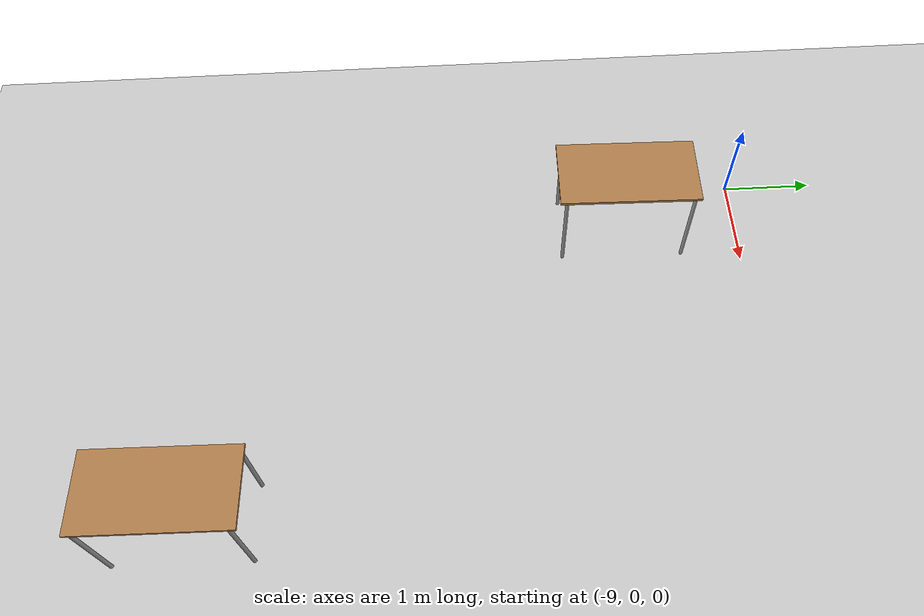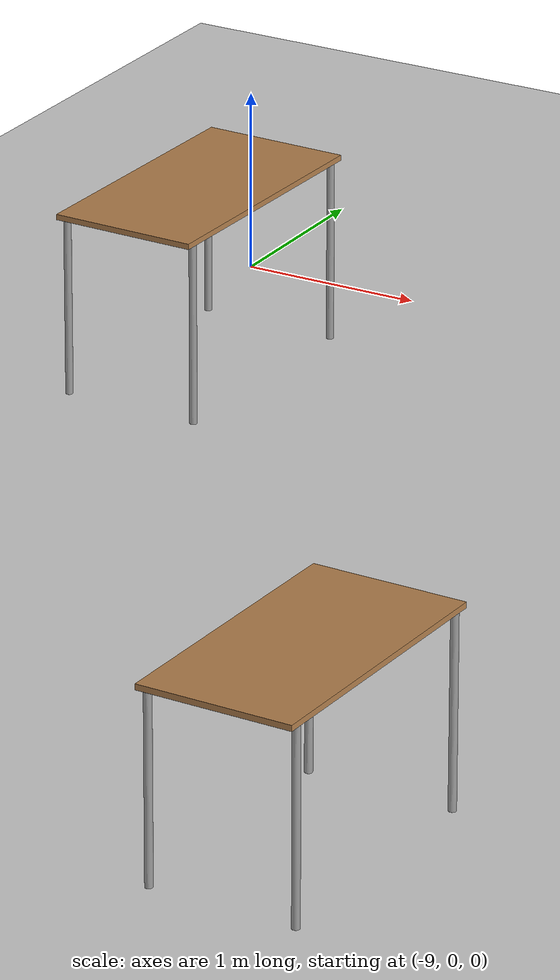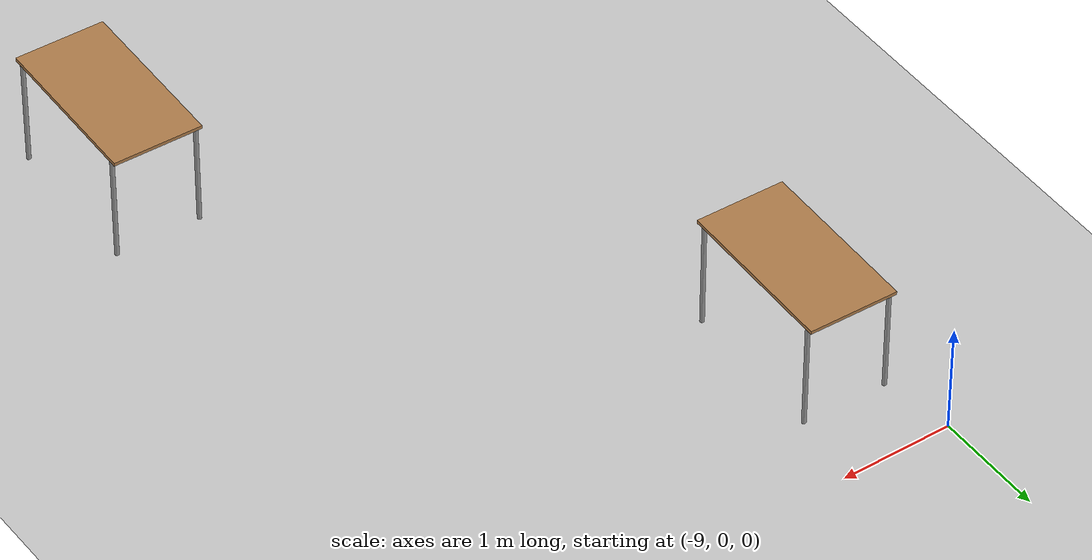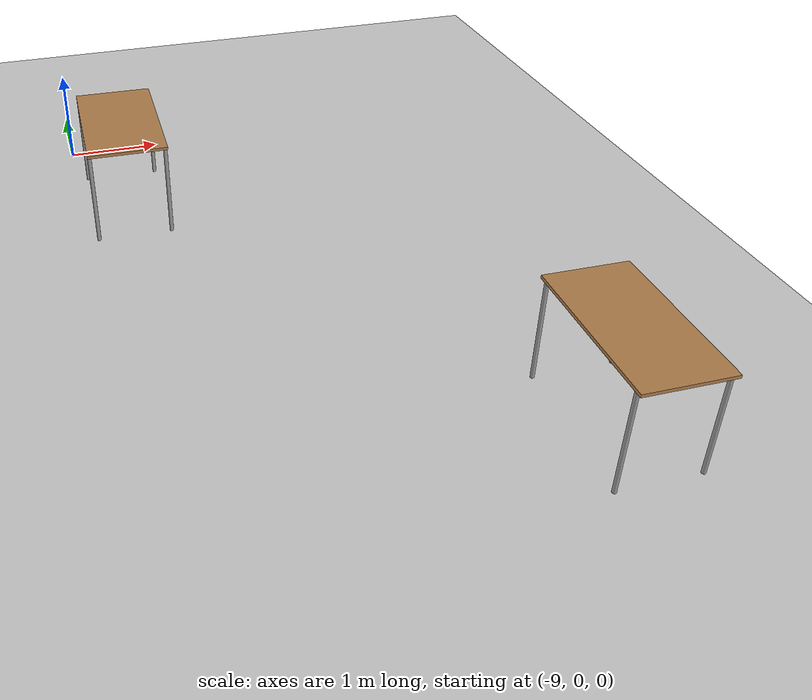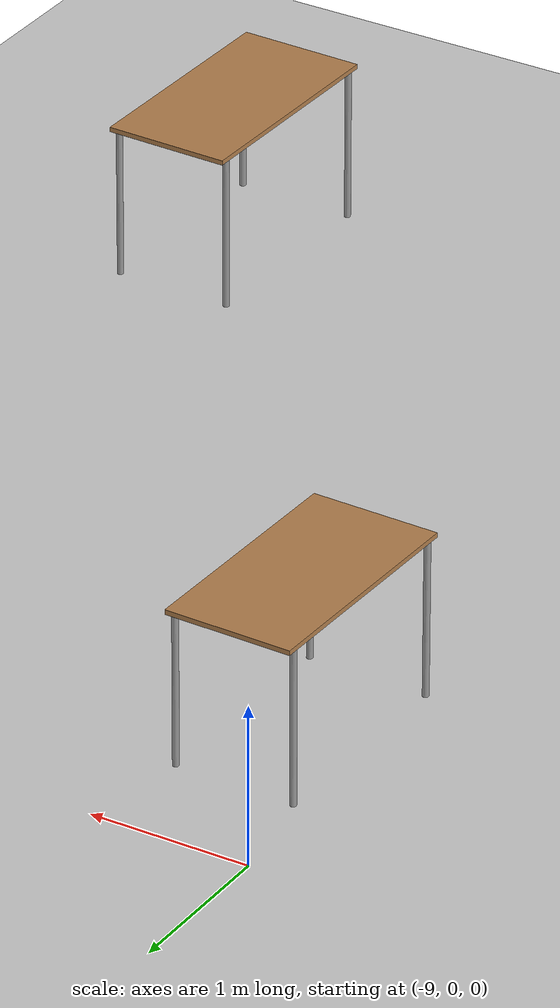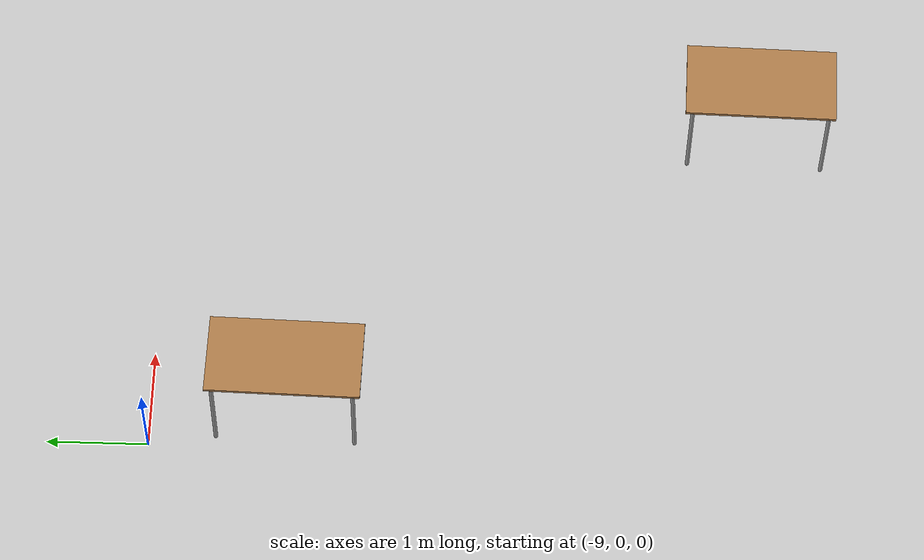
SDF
<sdf version="1.6">
 <world name="default">
  <model name="ground_plane">
   <static>1</static>
   <link name="link">
    <collision name="collision">
     <geometry><plane><normal>0 0 1</normal><size>100 100</size></plane></geometry>
     <surface>
      <contact><collide_bitmask>65535</collide_bitmask></contact>
      <friction><ode><mu>100</mu><mu2>50</mu2></ode></friction>
     </surface>
    </collision>
    <visual name="visual">
     <cast_shadows>0</cast_shadows>
     <geometry><plane><normal>0 0 1</normal><size>100 100</size></plane></geometry>
     <material>
      <script><uri>file://media/materials/scripts/gazebo.material</uri><name>Gazebo/Grey</name></script>
     </material>
    </visual>
   </link>
  </model>
  <model name="table_3_clone_5">
   <static>1</static>
   <link name="link">
    <collision name="surface">
     <pose>0 0 1 0 -0 0</pose>
     <geometry><box><size>1.5 0.8 0.03</size></box></geometry>
     <surface><friction><ode><mu>0.6</mu><mu2>0.6</mu2></ode></friction></surface>
    </collision>
    <visual name="visual1">
     <pose>0 0 1 0 -0 0</pose>
     <geometry><box><size>1.5 0.8 0.03</size></box></geometry>
     <material>
      <script><uri>file://media/materials/scripts/gazebo.material</uri><name>Gazebo/Wood</name></script>
     </material>
    </visual>
    <collision name="front_left_leg">
     <pose>0.68 0.38 0.5 0 -0 0</pose>
     <geometry><cylinder><radius>0.02</radius><length>1</length></cylinder></geometry>
    </collision>
    <visual name="front_left_leg">
     <pose>0.68 0.38 0.5 0 -0 0</pose>
     <geometry><cylinder><radius>0.02</radius><length>1</length></cylinder></geometry>
     <material>
      <script><uri>file://media/materials/scripts/gazebo.material</uri><name>Gazebo/Grey</name></script>
     </material>
    </visual>
    <collision name="front_right_leg">
     <pose>0.68 -0.38 0.5 0 -0 0</pose>
     <geometry><cylinder><radius>0.02</radius><length>1</length></cylinder></geometry>
    </collision>
    <visual name="front_right_leg">
     <pose>0.68 -0.38 0.5 0 -0 0</pose>
     <geometry><cylinder><radius>0.02</radius><length>1</length></cylinder></geometry>
     <material>
      <script><uri>file://media/materials/scripts/gazebo.material</uri><name>Gazebo/Grey</name></script>
     </material>
    </visual>
    <collision name="back_right_leg">
     <pose>-0.68 -0.38 0.5 0 -0 0</pose>
     <geometry><cylinder><radius>0.02</radius><length>1</length></cylinder></geometry>
    </collision>
    <visual name="back_right_leg">
     <pose>-0.68 -0.38 0.5 0 -0 0</pose>
     <geometry><cylinder><radius>0.02</radius><length>1</length></cylinder></geometry>
     <material>
      <script><uri>file://media/materials/scripts/gazebo.material</uri><name>Gazebo/Grey</name></script>
     </material>
    </visual>
    <collision name="back_left_leg">
     <pose>-0.68 0.38 0.5 0 -0 0</pose>
     <geometry><cylinder><radius>0.02</radius><length>1</length></cylinder></geometry>
    </collision>
    <visual name="back_left_leg">
     <pose>-0.68 0.38 0.5 0 -0 0</pose>
     <geometry><cylinder><radius>0.02</radius><length>1</length></cylinder></geometry>
     <material>
      <script><uri>file://media/materials/scripts/gazebo.material</uri><name>Gazebo/Grey</name></script>
     </material>
    </visual>
   </link>
   <pose>-5.23891 -5.95711 0 0 -0 1.54837</pose>
  </model>
  <model name="table_3_clone_6">
   <static>1</static>
   <link name="link">
    <collision name="surface">
     <pose>0 0 1 0 -0 0</pose>
     <geometry><box><size>1.5 0.8 0.03</size></box></geometry>
     <surface><friction><ode><mu>0.6</mu><mu2>0.6</mu2></ode></friction></surface>
    </collision>
    <visual name="visual1">
     <pose>0 0 1 0 -0 0</pose>
     <geometry><box><size>1.5 0.8 0.03</size></box></geometry>
     <material>
      <script><uri>file://media/materials/scripts/gazebo.material</uri><name>Gazebo/Wood</name></script>
     </material>
    </visual>
    <collision name="front_left_leg">
     <pose>0.68 0.38 0.5 0 -0 0</pose>
     <geometry><cylinder><radius>0.02</radius><length>1</length></cylinder></geometry>
    </collision>
    <visual name="front_left_leg">
     <pose>0.68 0.38 0.5 0 -0 0</pose>
     <geometry><cylinder><radius>0.02</radius><length>1</length></cylinder></geometry>
     <material>
      <script><uri>file://media/materials/scripts/gazebo.material</uri><name>Gazebo/Grey</name></script>
     </material>
    </visual>
    <collision name="front_right_leg">
     <pose>0.68 -0.38 0.5 0 -0 0</pose>
     <geometry><cylinder><radius>0.02</radius><length>1</length></cylinder></geometry>
    </collision>
    <visual name="front_right_leg">
     <pose>0.68 -0.38 0.5 0 -0 0</pose>
     <geometry><cylinder><radius>0.02</radius><length>1</length></cylinder></geometry>
     <material>
      <script><uri>file://media/materials/scripts/gazebo.material</uri><name>Gazebo/Grey</name></script>
     </material>
    </visual>
    <collision name="back_right_leg">
     <pose>-0.68 -0.38 0.5 0 -0 0</pose>
     <geometry><cylinder><radius>0.02</radius><length>1</length></cylinder></geometry>
    </collision>
    <visual name="back_right_leg">
     <pose>-0.68 -0.38 0.5 0 -0 0</pose>
     <geometry><cylinder><radius>0.02</radius><length>1</length></cylinder></geometry>
     <material>
      <script><uri>file://media/materials/scripts/gazebo.material</uri><name>Gazebo/Grey</name></script>
     </material>
    </visual>
    <collision name="back_left_leg">
     <pose>-0.68 0.38 0.5 0 -0 0</pose>
     <geometry><cylinder><radius>0.02</radius><length>1</length></cylinder></geometry>
    </collision>
    <visual name="back_left_leg">
     <pose>-0.68 0.38 0.5 0 -0 0</pose>
     <geometry><cylinder><radius>0.02</radius><length>1</length></cylinder></geometry>
     <material>
      <script><uri>file://media/materials/scripts/gazebo.material</uri><name>Gazebo/Grey</name></script>
     </material>
    </visual>
   </link>
   <pose>-8.51781 -1.34228 0 0 -0 1.54837</pose>
  </model>
 </world>
</sdf>
